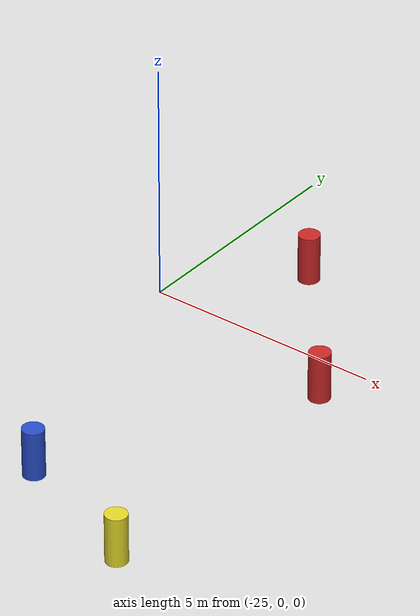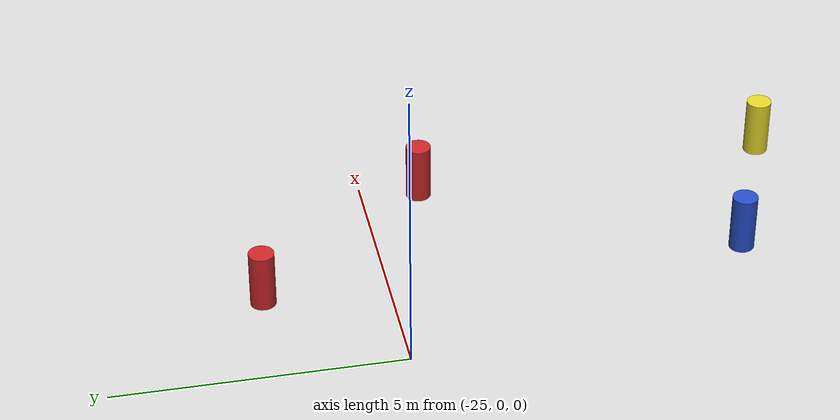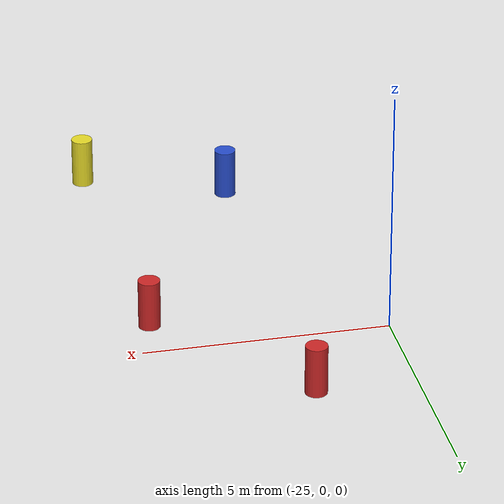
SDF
<sdf version="1.7">
 <world name="IGVC AutoNav">
  <model name="barrel_7">
   <link name="link">
    <inertial>
     <mass>1</mass>
     <inertia><ixx>0.145833</ixx><ixy>0</ixy><ixz>0</ixz><iyy>0.145833</iyy><iyz>0</iyz><izz>0.125</izz></inertia>
    </inertial>
    <visual name="visual">
     <geometry><cylinder><radius>0.222916</radius><length>1.03567</length></cylinder></geometry>
     <material>
      <script><name>Gazebo/Blue</name><uri>file://media/materials/scripts/gazebo.material</uri></script>
      <shader type="pixel"/>
     </material>
    </visual>
    <collision name="collision">
     <geometry><cylinder><radius>0.222916</radius><length>1.03567</length></cylinder></geometry>
     <surface>
      <friction>
       <ode><mu>1</mu><mu2>1</mu2><fdir1>0 0 0</fdir1><slip1>0</slip1><slip2>0</slip2></ode>
       <torsional>
        <coefficient>1</coefficient>
        <patch_radius>0</patch_radius>
        <surface_radius>0</surface_radius>
        <use_patch_radius>1</use_patch_radius>
        <ode><slip>0</slip></ode>
       </torsional>
      </friction>
      <bounce><restitution_coefficient>0</restitution_coefficient><threshold>1e+06</threshold></bounce>
      <contact>
       <collide_without_contact>0</collide_without_contact>
       <collide_without_contact_bitmask>1</collide_without_contact_bitmask>
       <collide_bitmask>1</collide_bitmask>
       <ode>
        <soft_cfm>0</soft_cfm>
        <soft_erp>0.2</soft_erp>
        <kp>1e+13</kp>
        <kd>1</kd>
        <max_vel>0.01</max_vel>
        <min_depth>0</min_depth>
       </ode>
       <bullet>
        <split_impulse>1</split_impulse>
        <split_impulse_penetration_threshold>-0.01</split_impulse_penetration_threshold>
        <soft_cfm>0</soft_cfm>
        <soft_erp>0.2</soft_erp>
        <kp>1e+13</kp>
        <kd>1</kd>
       </bullet>
      </contact>
     </surface>
    </collision>
   </link>
   <static>0</static>
   <pose>-22.997 -6.29974 0.517826 0 -0 0.000381</pose>
  </model>
  <model name="barrel_11">
   <link name="link">
    <inertial>
     <mass>1</mass>
     <inertia><ixx>0.145833</ixx><ixy>0</ixy><ixz>0</ixz><iyy>0.145833</iyy><iyz>0</iyz><izz>0.125</izz></inertia>
    </inertial>
    <visual name="visual">
     <geometry><cylinder><radius>0.222916</radius><length>1.03567</length></cylinder></geometry>
     <material>
      <script><name>Gazebo/Yellow</name><uri>file://media/materials/scripts/gazebo.material</uri></script>
      <shader type="pixel"/>
     </material>
    </visual>
    <collision name="collision">
     <geometry><cylinder><radius>0.222916</radius><length>1.03567</length></cylinder></geometry>
     <surface>
      <friction>
       <ode><mu>1</mu><mu2>1</mu2><fdir1>0 0 0</fdir1><slip1>0</slip1><slip2>0</slip2></ode>
       <torsional>
        <coefficient>1</coefficient>
        <patch_radius>0</patch_radius>
        <surface_radius>0</surface_radius>
        <use_patch_radius>1</use_patch_radius>
        <ode><slip>0</slip></ode>
       </torsional>
      </friction>
      <bounce><restitution_coefficient>0</restitution_coefficient><threshold>1e+06</threshold></bounce>
      <contact>
       <collide_without_contact>0</collide_without_contact>
       <collide_without_contact_bitmask>1</collide_without_contact_bitmask>
       <collide_bitmask>1</collide_bitmask>
       <ode>
        <soft_cfm>0</soft_cfm>
        <soft_erp>0.2</soft_erp>
        <kp>1e+13</kp>
        <kd>1</kd>
        <max_vel>0.01</max_vel>
        <min_depth>0</min_depth>
       </ode>
       <bullet>
        <split_impulse>1</split_impulse>
        <split_impulse_penetration_threshold>-0.01</split_impulse_penetration_threshold>
        <soft_cfm>0</soft_cfm>
        <soft_erp>0.2</soft_erp>
        <kp>1e+13</kp>
        <kd>1</kd>
       </bullet>
      </contact>
     </surface>
    </collision>
   </link>
   <static>0</static>
   <pose>-20.098 -7.4723 0.517827 -1e-06 -1e-06 0.00035</pose>
  </model>
  <model name="barrel_26_clone">
   <link name="link">
    <inertial>
     <mass>1</mass>
     <inertia><ixx>0.145833</ixx><ixy>0</ixy><ixz>0</ixz><iyy>0.145833</iyy><iyz>0</iyz><izz>0.125</izz></inertia>
    </inertial>
    <visual name="visual">
     <geometry><cylinder><radius>0.222916</radius><length>1.03567</length></cylinder></geometry>
     <material>
      <script><name>Gazebo/Red</name><uri>file://media/materials/scripts/gazebo.material</uri></script>
      <shader type="pixel"/>
     </material>
    </visual>
    <collision name="collision">
     <geometry><cylinder><radius>0.222916</radius><length>1.03567</length></cylinder></geometry>
     <surface>
      <friction>
       <ode><mu>1</mu><mu2>1</mu2><fdir1>0 0 0</fdir1><slip1>0</slip1><slip2>0</slip2></ode>
       <torsional>
        <coefficient>1</coefficient>
        <patch_radius>0</patch_radius>
        <surface_radius>0</surface_radius>
        <use_patch_radius>1</use_patch_radius>
        <ode><slip>0</slip></ode>
       </torsional>
      </friction>
      <bounce><restitution_coefficient>0</restitution_coefficient><threshold>1e+06</threshold></bounce>
      <contact>
       <collide_without_contact>0</collide_without_contact>
       <collide_without_contact_bitmask>1</collide_without_contact_bitmask>
       <collide_bitmask>1</collide_bitmask>
       <ode>
        <soft_cfm>0</soft_cfm>
        <soft_erp>0.2</soft_erp>
        <kp>1e+13</kp>
        <kd>1</kd>
        <max_vel>0.01</max_vel>
        <min_depth>0</min_depth>
       </ode>
       <bullet>
        <split_impulse>1</split_impulse>
        <split_impulse_penetration_threshold>-0.01</split_impulse_penetration_threshold>
        <soft_cfm>0</soft_cfm>
        <soft_erp>0.2</soft_erp>
        <kp>1e+13</kp>
        <kd>1</kd>
       </bullet>
      </contact>
     </surface>
    </collision>
   </link>
   <static>0</static>
   <pose>-22.9796 2.17198 0.517834 1e-06 -0 0.000347</pose>
  </model>
  <model name="barrel_26_clone_0">
   <link name="link">
    <inertial>
     <mass>1</mass>
     <inertia><ixx>0.145833</ixx><ixy>0</ixy><ixz>0</ixz><iyy>0.145833</iyy><iyz>0</iyz><izz>0.125</izz></inertia>
    </inertial>
    <visual name="visual">
     <geometry><cylinder><radius>0.222916</radius><length>1.03567</length></cylinder></geometry>
     <material>
      <script><name>Gazebo/Red</name><uri>file://media/materials/scripts/gazebo.material</uri></script>
      <shader type="pixel"/>
     </material>
    </visual>
    <collision name="collision">
     <geometry><cylinder><radius>0.222916</radius><length>1.03567</length></cylinder></geometry>
     <surface>
      <friction>
       <ode><mu>1</mu><mu2>1</mu2><fdir1>0 0 0</fdir1><slip1>0</slip1><slip2>0</slip2></ode>
       <torsional>
        <coefficient>1</coefficient>
        <patch_radius>0</patch_radius>
        <surface_radius>0</surface_radius>
        <use_patch_radius>1</use_patch_radius>
        <ode><slip>0</slip></ode>
       </torsional>
      </friction>
      <bounce><restitution_coefficient>0</restitution_coefficient><threshold>1e+06</threshold></bounce>
      <contact>
       <collide_without_contact>0</collide_without_contact>
       <collide_without_contact_bitmask>1</collide_without_contact_bitmask>
       <collide_bitmask>1</collide_bitmask>
       <ode>
        <soft_cfm>0</soft_cfm>
        <soft_erp>0.2</soft_erp>
        <kp>1e+13</kp>
        <kd>1</kd>
        <max_vel>0.01</max_vel>
        <min_depth>0</min_depth>
       </ode>
       <bullet>
        <split_impulse>1</split_impulse>
        <split_impulse_penetration_threshold>-0.01</split_impulse_penetration_threshold>
        <soft_cfm>0</soft_cfm>
        <soft_erp>0.2</soft_erp>
        <kp>1e+13</kp>
        <kd>1</kd>
       </bullet>
      </contact>
     </surface>
    </collision>
   </link>
   <static>0</static>
   <pose>-20.3352 -1.03364 0.517834 1e-06 -0 0.000351</pose>
  </model>
 </world>
</sdf>
